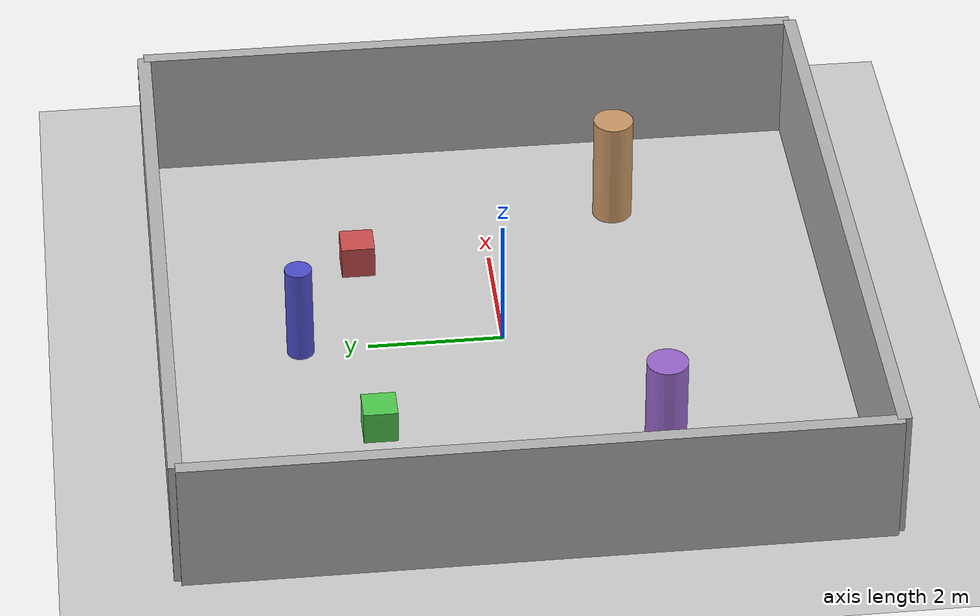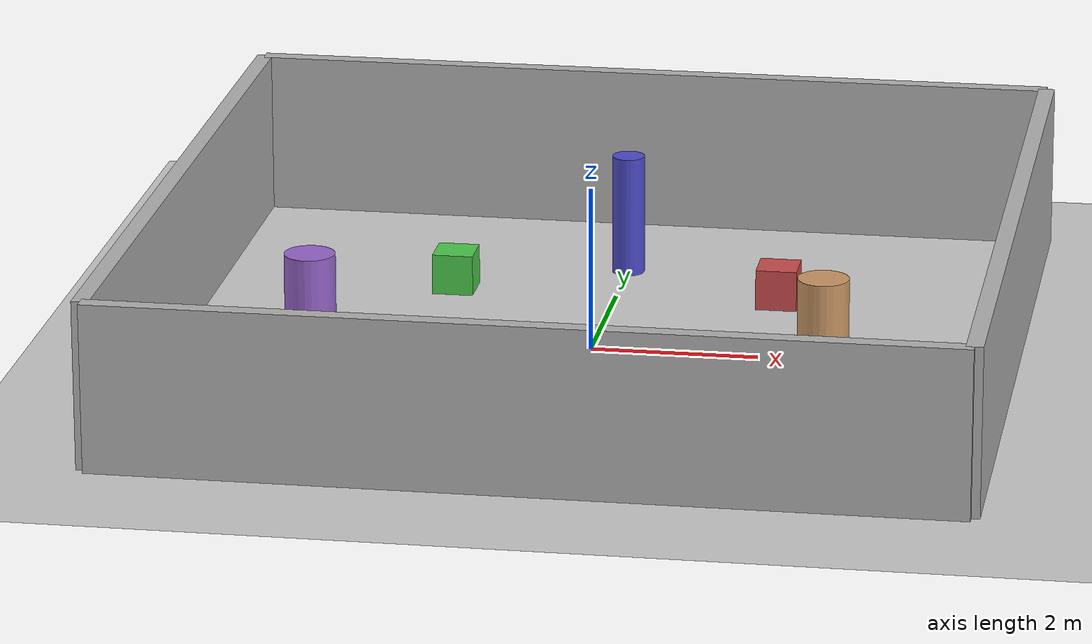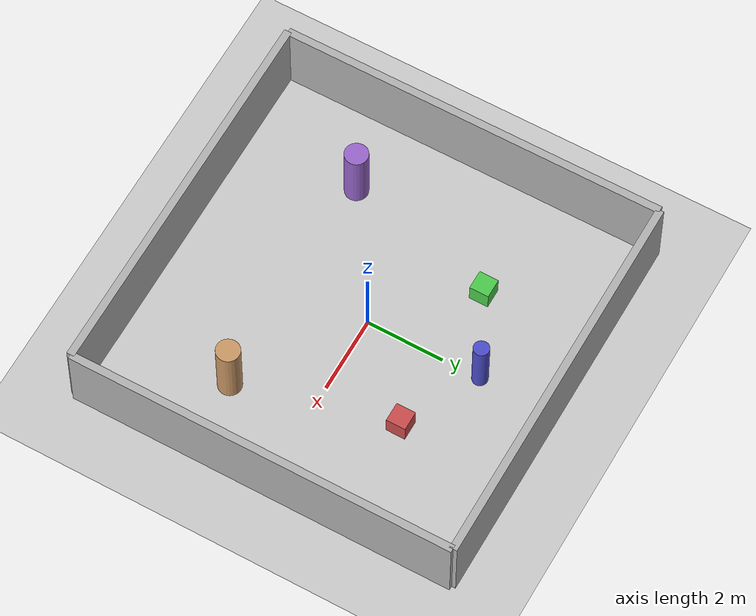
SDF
<?xml version="1.0"?>
<sdf version="1.6">
  <world name="bin_boy_test_world">

    <!-- Physics settings -->
    <physics type="ode">
      <max_step_size>0.001</max_step_size>
      <real_time_factor>1.0</real_time_factor>
      <real_time_update_rate>1000</real_time_update_rate>
    </physics>

    <!-- Lighting -->
    <include>
      <uri>model://sun</uri>
    </include>

    <!-- Ground plane -->
    <include>
      <uri>model://ground_plane</uri>
    </include>

    <!-- Indoor room (10m x 10m) with walls -->

    <!-- North wall -->
    <model name="wall_north">
      <static>true</static>
      <pose>5 0 1 0 0 0</pose>
      <link name="link">
        <collision name="collision">
          <geometry>
            <box>
              <size>0.2 10 2</size>
            </box>
          </geometry>
        </collision>
        <visual name="visual">
          <geometry>
            <box>
              <size>0.2 10 2</size>
            </box>
          </geometry>
          <material>
            <ambient>0.7 0.7 0.7 1</ambient>
          </material>
        </visual>
      </link>
    </model>

    <!-- South wall -->
    <model name="wall_south">
      <static>true</static>
      <pose>-5 0 1 0 0 0</pose>
      <link name="link">
        <collision name="collision">
          <geometry>
            <box>
              <size>0.2 10 2</size>
            </box>
          </geometry>
        </collision>
        <visual name="visual">
          <geometry>
            <box>
              <size>0.2 10 2</size>
            </box>
          </geometry>
          <material>
            <ambient>0.7 0.7 0.7 1</ambient>
          </material>
        </visual>
      </link>
    </model>

    <!-- East wall -->
    <model name="wall_east">
      <static>true</static>
      <pose>0 5 1 0 0 0</pose>
      <link name="link">
        <collision name="collision">
          <geometry>
            <box>
              <size>10 0.2 2</size>
            </box>
          </geometry>
        </collision>
        <visual name="visual">
          <geometry>
            <box>
              <size>10 0.2 2</size>
            </box>
          </geometry>
          <material>
            <ambient>0.7 0.7 0.7 1</ambient>
          </material>
        </visual>
      </link>
    </model>

    <!-- West wall -->
    <model name="wall_west">
      <static>true</static>
      <pose>0 -5 1 0 0 0</pose>
      <link name="link">
        <collision name="collision">
          <geometry>
            <box>
              <size>10 0.2 2</size>
            </box>
          </geometry>
        </collision>
        <visual name="visual">
          <geometry>
            <box>
              <size>10 0.2 2</size>
            </box>
          </geometry>
          <material>
            <ambient>0.7 0.7 0.7 1</ambient>
          </material>
        </visual>
      </link>
    </model>

    <!-- Obstacles for navigation testing -->

    <!-- Box obstacle 1 -->
    <model name="obstacle_box1">
      <static>true</static>
      <pose>2 2 0.25 0 0 0</pose>
      <link name="link">
        <collision name="collision">
          <geometry>
            <box>
              <size>0.5 0.5 0.5</size>
            </box>
          </geometry>
        </collision>
        <visual name="visual">
          <geometry>
            <box>
              <size>0.5 0.5 0.5</size>
            </box>
          </geometry>
          <material>
            <ambient>0.8 0.3 0.3 1</ambient>
          </material>
        </visual>
      </link>
    </model>

    <!-- Box obstacle 2 -->
    <model name="obstacle_box2">
      <static>true</static>
      <pose>-2 2 0.25 0 0 0</pose>
      <link name="link">
        <collision name="collision">
          <geometry>
            <box>
              <size>0.5 0.5 0.5</size>
            </box>
          </geometry>
        </collision>
        <visual name="visual">
          <geometry>
            <box>
              <size>0.5 0.5 0.5</size>
            </box>
          </geometry>
          <material>
            <ambient>0.3 0.8 0.3 1</ambient>
          </material>
        </visual>
      </link>
    </model>

    <!-- Cylindrical obstacle (like a pillar) -->
    <model name="obstacle_cylinder">
      <static>true</static>
      <pose>0 3 0.75 0 0 0</pose>
      <link name="link">
        <collision name="collision">
          <geometry>
            <cylinder>
              <radius>0.2</radius>
              <length>1.5</length>
            </cylinder>
          </geometry>
        </collision>
        <visual name="visual">
          <geometry>
            <cylinder>
              <radius>0.2</radius>
              <length>1.5</length>
            </cylinder>
          </geometry>
          <material>
            <ambient>0.3 0.3 0.8 1</ambient>
          </material>
        </visual>
      </link>
    </model>

    <!-- Person model 1 (simple cylinder to represent person) -->
    <model name="person1">
      <static>false</static>
      <pose>3 -2 0.85 0 0 0</pose>
      <link name="link">
        <collision name="collision">
          <geometry>
            <cylinder>
              <radius>0.3</radius>
              <length>1.7</length>
            </cylinder>
          </geometry>
        </collision>
        <visual name="visual">
          <geometry>
            <cylinder>
              <radius>0.3</radius>
              <length>1.7</length>
            </cylinder>
          </geometry>
          <material>
            <ambient>0.8 0.6 0.4 1</ambient>
          </material>
        </visual>
        <inertial>
          <mass>70</mass>
          <inertia>
            <ixx>5.0</ixx>
            <iyy>5.0</iyy>
            <izz>1.0</izz>
          </inertia>
        </inertial>
      </link>
    </model>

    <!-- Person model 2 -->
    <model name="person2">
      <static>false</static>
      <pose>-3 -2 0.85 0 0 1.57</pose>
      <link name="link">
        <collision name="collision">
          <geometry>
            <cylinder>
              <radius>0.3</radius>
              <length>1.7</length>
            </cylinder>
          </geometry>
        </collision>
        <visual name="visual">
          <geometry>
            <cylinder>
              <radius>0.3</radius>
              <length>1.7</length>
            </cylinder>
          </geometry>
          <material>
            <ambient>0.6 0.4 0.8 1</ambient>
          </material>
        </visual>
        <inertial>
          <mass>70</mass>
          <inertia>
            <ixx>5.0</ixx>
            <iyy>5.0</iyy>
            <izz>1.0</izz>
          </inertia>
        </inertial>
      </link>
    </model>

    <!-- Scene settings -->
    <scene>
      <ambient>0.4 0.4 0.4 1</ambient>
      <background>0.7 0.7 0.7 1</background>
      <shadows>true</shadows>
    </scene>

    <!-- GUI settings -->
    <gui fullscreen='0'>
      <camera name='user_camera'>
        <pose>-8 -8 8 0 0.5 0.8</pose>
        <view_controller>orbit</view_controller>
      </camera>
    </gui>

    <!-- Gazebo ROS State Publisher Plugin -->
    <!-- Publishes /model_states topic for mock person detector -->
    <plugin name="gazebo_ros_state" filename="libgazebo_ros_state.so">
      <ros>
        <namespace>/</namespace>
        <argument>model_states:=model_states</argument>
      </ros>
      <update_rate>30.0</update_rate>
    </plugin>

  </world>
</sdf>
